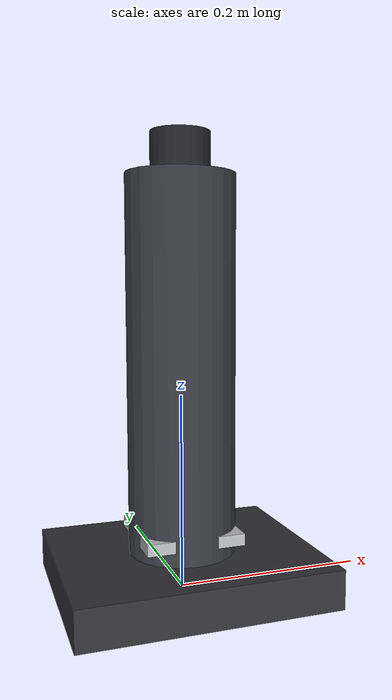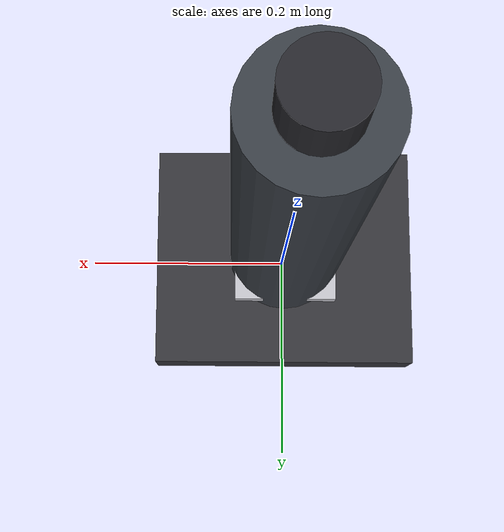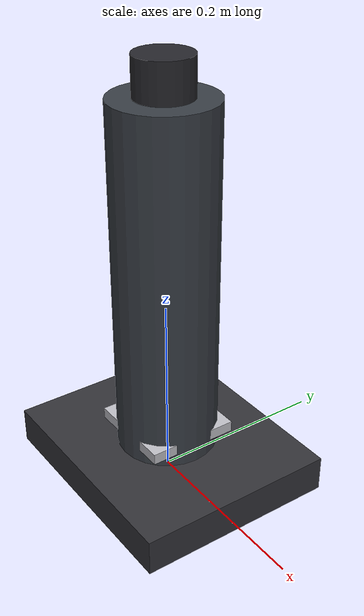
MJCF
<?xml version="1.0" encoding="utf-8"?>
<mujoco model="real_lab_waseda_university_jem2100f">
  <compiler angle="radian" autolimits="true"/>
  <default>
    <default class="body"><geom contype="1" conaffinity="1"/></default>
  </default>
  <worldbody>
    <body name="base">
      <geom type="box" size="0.13 0.11 0.02" pos="0 0 0.02" rgba="0.2 0.2 0.22 1" class="body"/>
      <geom type="cylinder" size="0.055 0.19" pos="0 0 0.23" rgba="0.22 0.24 0.27 1" class="body"/>
      <geom type="cylinder" size="0.03 0.02" pos="0 0 0.44" rgba="0.15 0.15 0.17 1" class="body"/>
      <body name="goniometer_stage" pos="0.0 0.0 0.06">
        <joint name="goniometer_stage_joint" type="hinge" axis="1 0 0" range="-0.5 0.5" damping="0.5" frictionloss="0.2"/>
  <geom type="box" size="0.05 0.05 0.006" pos="0 0 0" rgba="0.75 0.75 0.78 1" class="body"/>
      </body>
    </body>
  </worldbody>
</mujoco>
